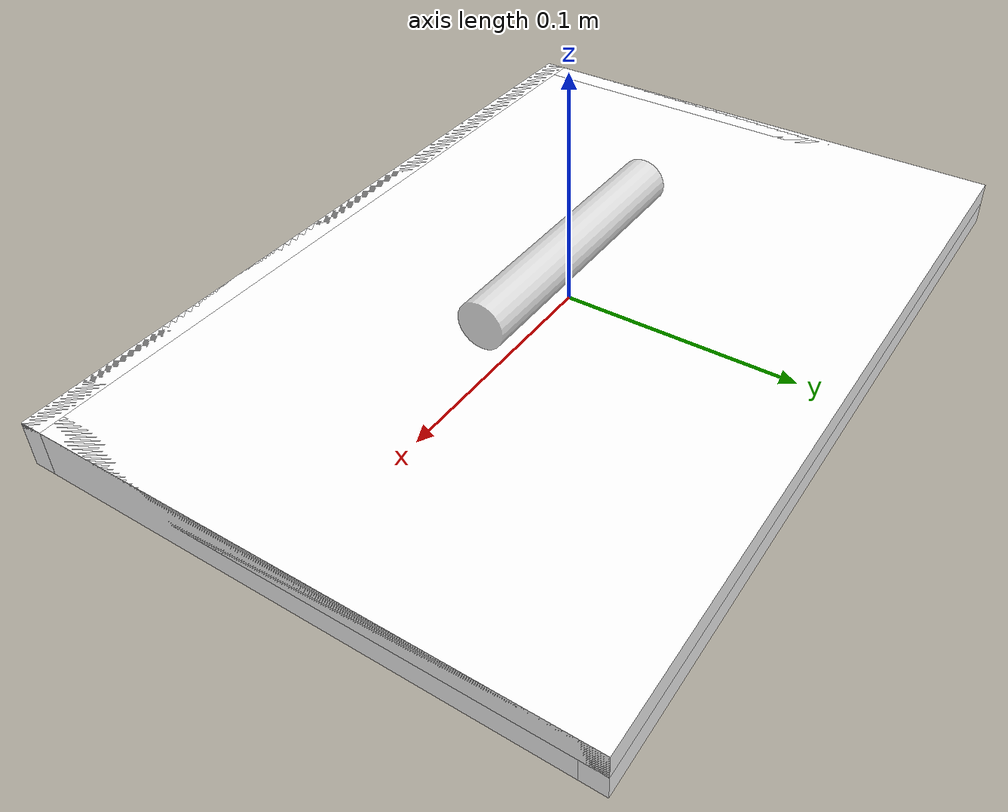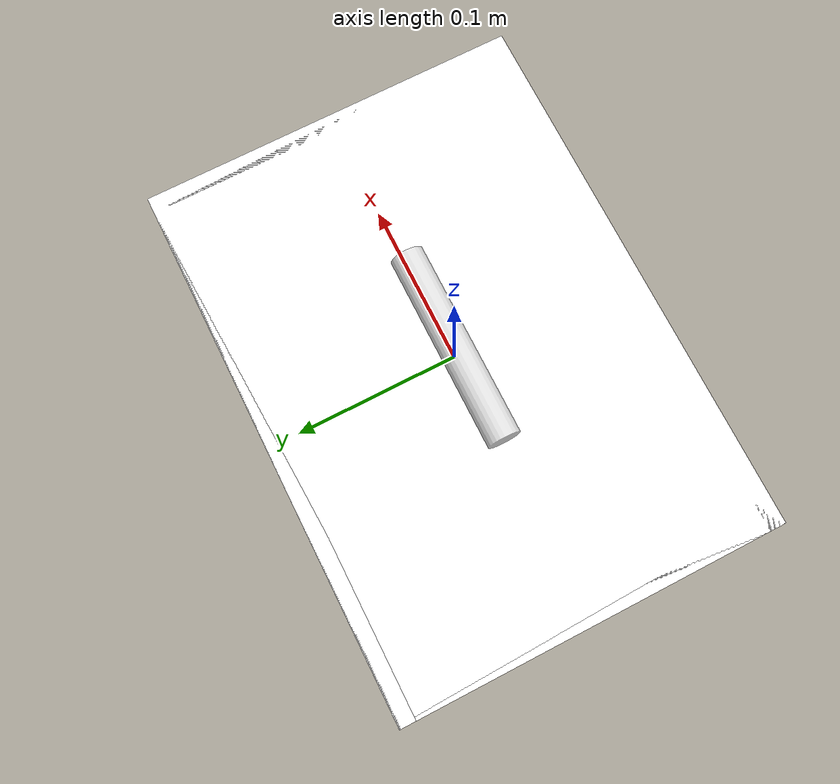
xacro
<?xml version="1.0"?>
<robot xmlns:xacro="http://www.ros.org/wiki/xacro" name="lid">

<xacro:include filename="container_common.xacro"/>

<link name="base_link">
  <inertial>
    <origin rpy="0 0 0" xyz="0 0 0"/>
    <mass value="0.1"/>
    <inertia ixx="1" ixy="0" ixz="0" iyy="1" iyz="0" izz="1"/>
  </inertial>
</link>

<xacro:corpus prefix="lid" width="${total_width+2*(wall_thickness+lid_spacing)}" depth="${total_depth+2*(wall_thickness+lid_spacing)}" height="${total_height*0.2}" wall_thickness="${wall_thickness}" color="white"/>

<xacro:handle length="${total_width*0.4}"/>
<joint name="handle_joint" type="fixed">
  <origin xyz="0 0 ${-wall_thickness/2-0.02}" rpy="0 ${pi/2} 0"/>
  <parent link="lid_bottom_plane"/>
  <child link="handle"/>
</joint>

<joint name="frame_joint" type="fixed">
  <origin xyz="0 0 0" rpy="${pi} 0 0"/>
  <parent link="base_link"/>
  <child link="lid_bottom_plane"/>
</joint>

<link name="door_handle_dummy_link">
    <!-- This dummy link is added s.t. the handle is the parent of some link and we can find the handle's index. -->
    <inertial>
        <origin rpy="0 0 0" xyz="0 0 0"/>
        <mass value="0.0"/>
        <inertia ixx="1" ixy="0" ixz="0" iyy="1" iyz="0" izz="1"/>
    </inertial>
</link>

<joint name="door_handle_dummy_joint" type="fixed">
    <origin xyz="0 0 0" rpy="0 0 0"/>
    <parent link="handle"/>
    <child link="door_handle_dummy_link"/>
</joint>

</robot>

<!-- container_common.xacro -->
<robot xmlns:xacro="http://www.ros.org/wiki/xacro" name="container_common">

<xacro:property name="wall_thickness" value="0.01"/>
<xacro:property name="total_height" value="0.1"/>
<xacro:property name="total_width" value="0.3"/>
<xacro:property name="total_depth" value="0.2"/>
<xacro:property name="lid_spacing" value="0.01"/>

<material name="white">
  <color rgba="1 1 1 1"/>
</material>
<material name="dark_brown">
  <color rgba="0.4 0.2 0.0 1"/>
</material>
<material name="light_brown">
  <color rgba="0.6 0.29 0.0 1"/>
</material>
<material name="silver">
  <color rgba="0.87 0.87 0.87 0.8"/>
</material>

<xacro:macro name="ori_geo" params="width depth height">
  <origin rpy="0 0 0" xyz="0 0 0"/>
  <geometry>
    <box size="${width} ${depth} ${height}"/>
  </geometry>
</xacro:macro>

<xacro:macro name="plane" params="prefix width depth thickness color">
  <link name="${prefix}_plane">
    <contact>
      <lateral_friction value="1.0"/>
    </contact>
    <inertial>
      <origin rpy="0 0 0" xyz="0 0 0"/>
       <mass value="0.02"/>
       <inertia ixx="1" ixy="0" ixz="0" iyy="1" iyz="0" izz="1"/>
    </inertial>
    <visual>
      <xacro:ori_geo width="${width}" depth="${depth}" height="${thickness}"/>
      <material name="${color}"/>
    </visual>
    <collision>
      <xacro:ori_geo width="${width}" depth="${depth}" height="${thickness}"/>
    </collision>
  </link>
</xacro:macro>

<xacro:macro name="corpus" params="prefix width depth height wall_thickness color">
  <xacro:plane prefix="${prefix}_bottom" width="${width}" depth="${depth}" thickness="${wall_thickness}" color="${color}"/>

  <xacro:plane prefix="${prefix}_back" width="${width}" depth="${height}" thickness="${wall_thickness}" color="${color}"/>
  <joint name="${prefix}_back_joint" type="fixed">
    <origin xyz="0 ${depth/2-wall_thickness/2} ${height/2-wall_thickness/2}" rpy="${pi/2} 0 0"/>
    <parent link="${prefix}_bottom_plane"/>
    <child link="${prefix}_back_plane"/>
  </joint>

  <xacro:plane prefix="${prefix}_left" width="${depth-2*wall_thickness}" depth="${height}" thickness="${wall_thickness}" color="${color}"/>
  <joint name="${prefix}_left_joint" type="fixed">
    <origin xyz="-${width/2-wall_thickness/2} 0 ${height/2-wall_thickness/2}" rpy="${pi/2} 0 ${pi/2}"/>
    <parent link="${prefix}_bottom_plane"/>
    <child link="${prefix}_left_plane"/>
  </joint>

  <xacro:plane prefix="${prefix}_right" width="${depth-2*wall_thickness}" depth="${height}" thickness="${wall_thickness}" color="${color}"/>
  <joint name="${prefix}_right_joint" type="fixed">
    <origin xyz="${width/2-wall_thickness/2} 0 ${height/2-wall_thickness/2}" rpy="${pi/2} 0 ${pi/2}"/>
    <parent link="${prefix}_bottom_plane"/>
    <child link="${prefix}_right_plane"/>
  </joint>

  <xacro:plane prefix="${prefix}_front" width="${width}" depth="${height}" thickness="${wall_thickness}" color="${color}"/>
  <joint name="${prefix}_front_joint" type="fixed">
    <origin xyz="0 -${depth/2-wall_thickness/2} ${height/2-wall_thickness/2}" rpy="${pi/2} 0 0"/>
    <parent link="${prefix}_bottom_plane"/>
    <child link="${prefix}_front_plane"/>
  </joint>
</xacro:macro>

<xacro:macro name="handle" params="length">
<link name="handle">
  <inertial>
    <origin rpy="0 0 0" xyz="0 0 0"/>
    <mass value="0.02"/>
    <inertia ixx="1" ixy="0" ixz="0" iyy="1" iyz="0" izz="1"/>
  </inertial>
  <collision>
    <origin rpy="0 0 0" xyz="0 0 0"/>
    <geometry>
      <cylinder radius="0.01" length="${length}"/>
    </geometry>
  </collision>
  <visual>
    <origin rpy="0 0 0" xyz="0 0 0"/>
    <geometry>
      <cylinder radius="0.01" length="${length}"/>
    </geometry>
    <material name="silver"/>
  </visual>
</link>
</xacro:macro>

</robot>
